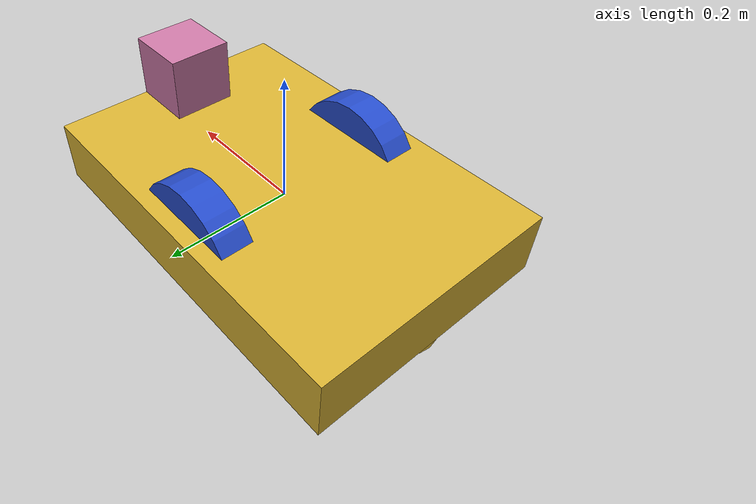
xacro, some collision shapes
<?xml version='1.0'?>

<robot name="my_robot" xmlns:xacro="http://www.ros.org/wiki/xacro">
    <xacro:include filename="$(find my_robot)/urdf/my_robot.gazebo"/>

    <link name="robot_footprint"></link>

    <joint name="robot_footprint_joint" type="fixed">
        <origin xyz="0 0 0" rpy="0 0 0"/>
        <parent link="robot_footprint"/>
        <child link="chassis"/>
    </joint>

    <link name='chassis'>
        <pose>0 0 0.1 0 0 0</pose>

        <inertial>
            <mass value="15.0"/>
            <origin xyz="0 0 0" rpy="0 0 0"/>
            <inertia
                ixx="0.1" ixy="0"   ixz="0"
                          iyy="0.1" iyz="0"
                                    izz="0.1"
            />
        </inertial>

        <collision name='collision'>
            <origin xyz="0 0 0" rpy="0 0 0"/>
            <geometry>
                <box size=".6 .4 .1"/>
            </geometry>
        </collision>

        <visual name='chassis_visual'>
            <origin xyz="0 0 0" rpy="0 0 0"/>
            <geometry>
                <box size=".6 .4 .1"/>
            </geometry>
        </visual>

        <collision name='back_caster_collision'>
            <origin xyz="-0.25 0 -0.05" rpy="0 0 0"/>
            <geometry>
                <sphere radius="0.0499"/>
            </geometry>
        </collision>

        <visual name='back_caster_visual'>
            <origin xyz="-0.25 0 -0.05" rpy="0 0 0"/>
            <geometry>
                <sphere radius="0.05"/>
            </geometry>
        </visual>

        <collision name='front_caster_collision'>
            <origin xyz="0.25 0 -0.05" rpy="0 0 0"/>
            <geometry>
                <sphere radius="0.0499"/>
            </geometry>
        </collision>

        <visual name='front_caster_visual'>
            <origin xyz="0.25 0 -0.05" rpy="0 0 0"/>
            <geometry>
                <sphere radius="0.05"/>
            </geometry>
        </visual>

    </link>

    <link name='left_wheel'>

        <inertial>
            <mass value="5"/>
            <inertia
                ixx="0.1" ixy="0"   ixz="0"
                          iyy="0.1" iyz="0"
                                    izz="0.1"
            />
        </inertial>

        <collision>
            <origin xyz="0 0 0" rpy="0 1.5707 1.5707"/>
            <geometry>
                <cylinder radius="0.1" length="0.05"/>
            </geometry>
        </collision>

        <visual>
            <origin xyz="0 0 0" rpy="0 1.5707 1.5707"/>
            <geometry>
                <cylinder radius="0.1" length="0.05"/>
            </geometry>
        </visual>

    </link>

    <joint type="continuous" name="left_wheel_hinge">
        <origin xyz="0 0.15 0" rpy="0 0 0"/>
        <child link="left_wheel"/>
        <parent link="chassis"/>
        <axis xyz="0 1 0" rpy="0 0 0"/>
        <limit effort="10000" velocity="1000"/>
        <dynamics damping="1.0" friction="1.0"/>
    </joint>

    <link name='right_wheel'>

        <inertial>
            <mass value="5"/>
            <inertia
                ixx="0.1" ixy="0"   ixz="0"
                          iyy="0.1" iyz="0"
                                    izz="0.1"
            />
        </inertial>

        <collision>
            <origin xyz="0 0 0" rpy="0 1.5707 1.5707"/>
            <geometry>
                <cylinder radius="0.1" length="0.05"/>
            </geometry>
        </collision>

        <visual>
            <origin xyz="0 0 0" rpy="0 1.5707 1.5707"/>
            <geometry>
                <cylinder radius="0.1" length="0.05"/>
            </geometry>
        </visual>

    </link>

    <joint type="continuous" name="right_wheel_hinge">
        <origin xyz="0 -0.15 0" rpy="0 0 0"/>
        <child link="right_wheel"/>
        <parent link="chassis"/>
        <axis xyz="0 1 0" rpy="0 0 0"/>
        <limit effort="10000" velocity="1000"/>
        <dynamics damping="1.0" friction="1.0"/>
    </joint>

    <link name='camera_link'>

        <inertial>
            <mass value="0.1"/>
            <inertia
                ixx="1e-6" ixy="0"   ixz="0"
                          iyy="1e-6" iyz="0"
                                    izz="1e-6"
            />
        </inertial>

        <collision>
            <origin xyz="0 0 0" rpy="0 0 0"/>
            <geometry>
                <box size="0.05 0.05 0.05"/>
            </geometry>
        </collision>

        <visual>
            <origin xyz="0 0 0" rpy="0 0 0"/>
            <geometry>
                <box size="0.05 0.05 0.05"/>
            </geometry>
        </visual>

    </link>

    <joint type="fixed" name="camera_joint">
        <origin xyz="0.3 0 0" rpy="0 0 0"/>
        <axis xyz="0 1 0" rpy="0 0 0"/>
        <parent link="chassis"/>
        <child link="camera_link"/>
    </joint>

    <link name="camera_link_optical">
    </link>

    <joint type="fixed" name="camera_optical_joint">
        <origin xyz="0 0 0" rpy="-1.5707 0 -1.5707"/>
        <parent link="camera_link"/>
        <child link="camera_link_optical"/>
    </joint>

    <link name='hokuyo'>
        <inertial>
            <mass value="1e-5"/>
            <inertia
                ixx="1e-6" ixy="0"   ixz="0"
                          iyy="1e-6" iyz="0"
                                    izz="1e-6"
            />
        </inertial>

        <collision>
            <origin xyz="0 0 0" rpy="0 0 0"/>
            <geometry>
                <box size="0.1 0.1 0.1"/>
            </geometry>
        </collision>

        <visual>
            <origin xyz="0 0 0" rpy="0 0 0"/>
            <geometry>
                <mesh filename="package://my_robot/meshes/hokuyo.dae"/>
            </geometry>
        </visual>
    </link>

    <joint type="fixed" name="hokuyo_joint">
        <origin xyz="0.25 0 0.1" rpy="0 0 0"/>
        <axis xyz="0 1 0" rpy="0 0 0"/>
        <parent link="chassis"/>
        <child link="hokuyo"/>
    </joint>

    <gazebo reference="left_wheel">
        <material>Gazebo/Blue</material>
    </gazebo>
    <gazebo reference="right_wheel">
        <material>Gazebo/Blue</material>
    </gazebo>
    <gazebo reference="chassis">
        <material>Gazebo/Gold</material>
    </gazebo>
    <gazebo reference="camera_link">
        <material>Gazebo/Yellow</material>
    </gazebo>
</robot>
